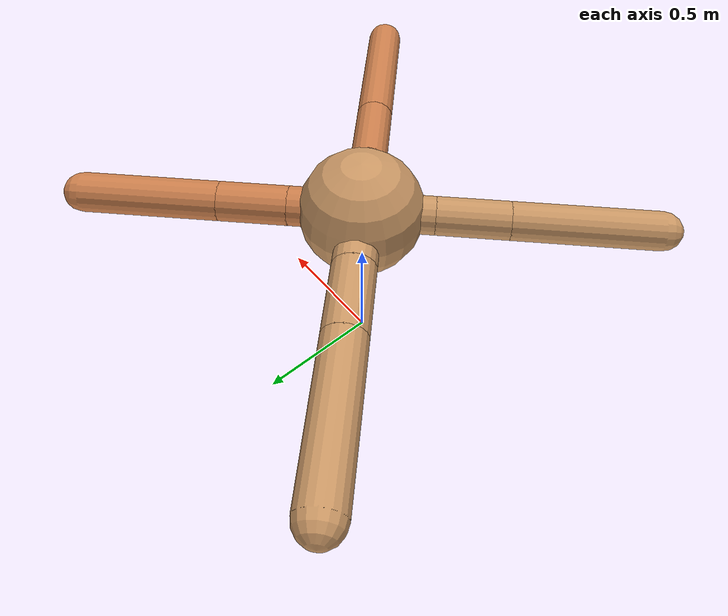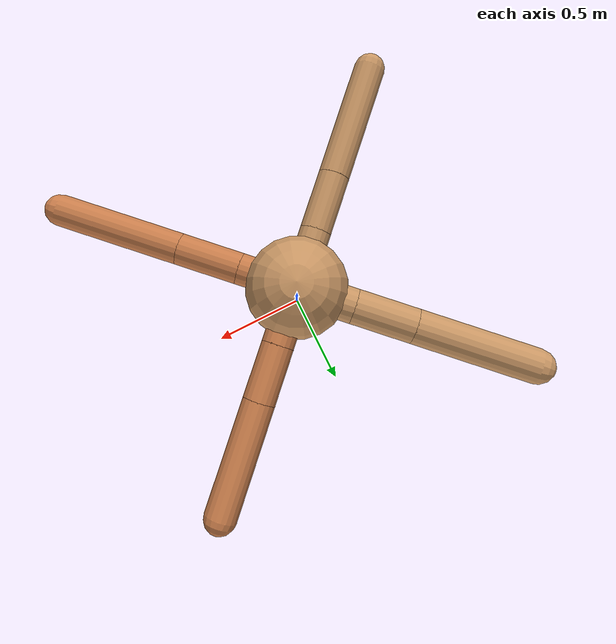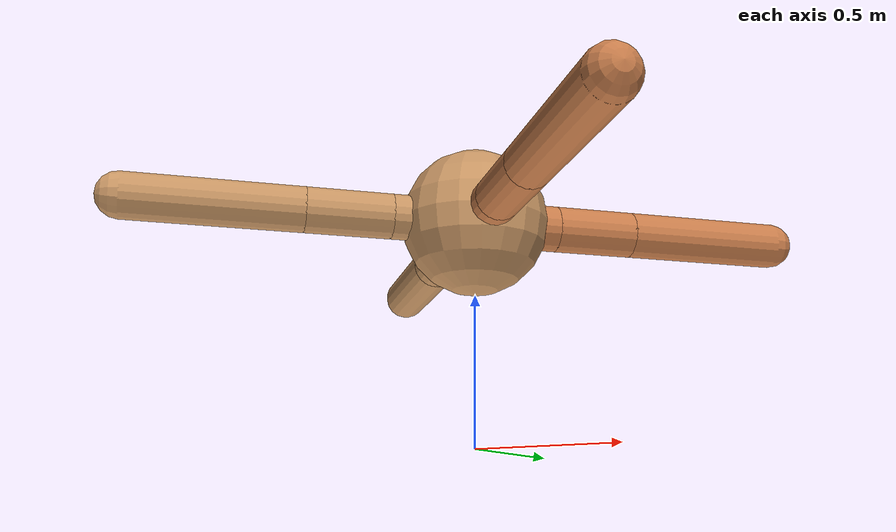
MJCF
<?xml version="1.0" ?>
<mujoco model="ant">

	<compiler angle="degree" coordinate="local" inertiafromgeom="true"/>

	<option integrator="RK4" timestep="0.01"/>

	<custom>

		<numeric data="0.0 0.0 0.55 1.0 0.0 0.0 0.0 0.0 1.0 0.0 -1.0 0.0 -1.0 0.0 1.0" name="init_qpos"/>

	</custom>

	<default>

		<joint armature="1" damping="1" limited="true"/>

		<geom conaffinity="0" condim="3" density="5.0" friction="1.5 0.1 0.1" margin="0.01" rgba="0.8 0.6 0.4 1"/>

	</default>

	<worldbody>

		<body name="torso" pos="0 0 0.75">

			<geom name="torso_geom" pos="0 0 0" size="0.24448383733873033" type="sphere"/>

			<!--joint armature="0" damping="0" limited="false" margin="0.01" name="root" pos="0 0 0" type="free"/-->

			<body name="front_left_leg" pos="0 0 0">

				<geom fromto="0 0 0 0.2 0.2 0" name="aux_1_geom" size="0.07776708811467378" type="capsule" rgba=".8 .5 .3 1"/>

				<body name="aux_1" pos="0.2 0.2 0">

					<joint axis="0 0 1" name="hip_1" pos="0.0 0.0 0.0" range="-40 40" type="hinge"/>

					<geom fromto="0 0 0 0.1920632498877662 0.1920632498877662 0" name="left_leg_geom" size="0.07776708811467378" type="capsule" rgba=".8 .5 .3 1"/>

					<body pos="0.1920632498877662 0.1920632498877662 0" name="front_left_foot">

						<joint axis="-1 1 0" name="ankle_1" pos="0.0 0.0 0.0" range="30 100" type="hinge"/>

						<geom fromto="0 0 0 0.3841264997755324 0.3841264997755324 0" name="left_ankle_geom" size="0.07776708811467378" type="capsule" rgba=".8 .5 .3 1"/>

					</body>

				</body>

			</body>

			<body name="front_right_leg" pos="0 0 0">

				<geom fromto="0 0 0 -0.2 0.2 0" name="aux_2_geom" size="0.08470563806087626" type="capsule"/>

				<body name="aux_2" pos="-0.2 0.2 0">

					<joint axis="0 0 1" name="hip_2" pos="0.0 0.0 0.0" range="-40 40" type="hinge"/>

					<geom fromto="0 0 0 -0.20839525359025038 0.20839525359025038 0" name="right_leg_geom" size="0.08470563806087626" type="capsule"/>

					<body pos="-0.20839525359025038 0.20839525359025038 0" name="front_right_foot">

						<joint axis="1 1 0" name="ankle_2" pos="0.0 0.0 0.0" range="-100 -30" type="hinge"/>

						<geom fromto="0 0 0 -0.41679050718050076 0.41679050718050076 0" name="right_ankle_geom" size="0.08470563806087626" type="capsule"/>

					</body>

				</body>

			</body>

			<body name="left_back_leg" pos="0 0 0">

				<geom fromto="0 0 0 -0.2 -0.2 0" name="aux_3_geom" size="0.07512787897458406" type="capsule"/>

				<body name="aux_3" pos="-0.2 -0.2 0">

					<joint axis="0 0 1" name="hip_3" pos="0.0 0.0 0.0" range="-40 40" type="hinge"/>

					<geom fromto="0 0 0 -0.1997434226370134 -0.1997434226370134 0" name="back_leg_geom" size="0.07512787897458406" type="capsule"/>

					<body pos="-0.1997434226370134 -0.1997434226370134 0" name="left_back_foot">

						<joint axis="-1 1 0" name="ankle_3" pos="0.0 0.0 0.0" range="-100 -30" type="hinge"/>

						<geom fromto="0 0 0 -0.3994868452740268 -0.3994868452740268 0" name="third_ankle_geom" size="0.07512787897458406" type="capsule"/>

					</body>

				</body>

			</body>

			<body name="right_back_leg" pos="0 0 0">

				<geom fromto="0 0 0 0.2 -0.2 0" name="aux_4_geom" size="0.07549028506548232" type="capsule" rgba=".8 .5 .3 1"/>

				<body name="aux_4" pos="0.2 -0.2 0">

					<joint axis="0 0 1" name="hip_4" pos="0.0 0.0 0.0" range="-40 40" type="hinge"/>

					<geom fromto="0 0 0 0.21130474412188882 -0.21130474412188882 0" name="rightback_leg_geom" size="0.07549028506548232" type="capsule" rgba=".8 .5 .3 1"/>

					<body pos="0.21130474412188882 -0.21130474412188882 0" name="right_back_foot">

						<joint axis="1 1 0" name="ankle_4" pos="0.0 0.0 0.0" range="30 100" type="hinge"/>

						<geom fromto="0 0 0 0.42260948824377764 -0.42260948824377764 0" name="fourth_ankle_geom" size="0.07549028506548232" type="capsule" rgba=".8 .5 .3 1"/>

					</body>

				</body>

			</body>

		</body>

	</worldbody>

	<actuator>

		<motor ctrllimited="true" ctrlrange="-1.0 1.0" joint="hip_4" gear="150"/>

		<motor ctrllimited="true" ctrlrange="-1.0 1.0" joint="ankle_4" gear="150"/>

		<motor ctrllimited="true" ctrlrange="-1.0 1.0" joint="hip_1" gear="150"/>

		<motor ctrllimited="true" ctrlrange="-1.0 1.0" joint="ankle_1" gear="150"/>

		<motor ctrllimited="true" ctrlrange="-1.0 1.0" joint="hip_2" gear="150"/>

		<motor ctrllimited="true" ctrlrange="-1.0 1.0" joint="ankle_2" gear="150"/>

		<motor ctrllimited="true" ctrlrange="-1.0 1.0" joint="hip_3" gear="150"/>

		<motor ctrllimited="true" ctrlrange="-1.0 1.0" joint="ankle_3" gear="150"/>

	</actuator>

</mujoco>
